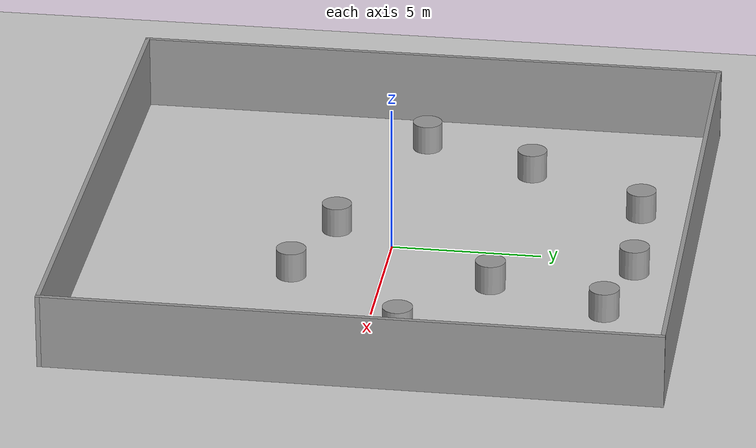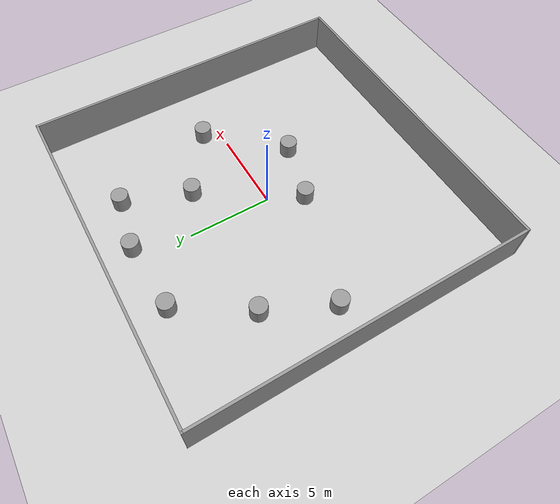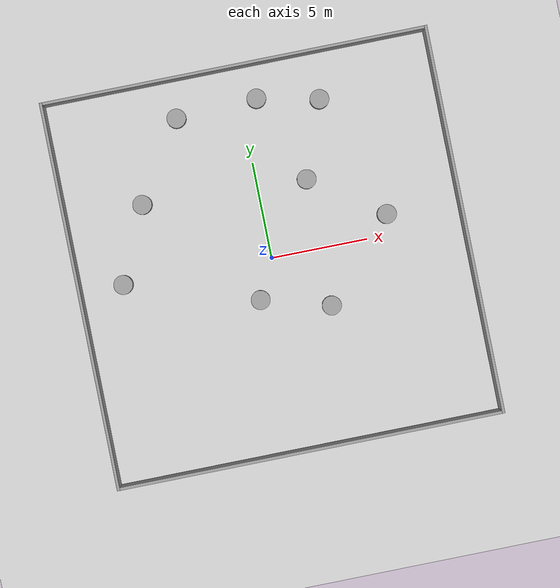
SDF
<sdf version="1.7">
 <world name="default">
  <light name="sun" type="directional">
   <pose>0 0 10 0 -0 0</pose>
   <diffuse>0.8 0.8 0.8 1</diffuse>
   <specular>0.2 0.2 0.2 1</specular>
   <attenuation>
    <range>1000</range>
    <constant>0.9</constant>
    <linear>0.01</linear>
    <quadratic>0.001</quadratic>
   </attenuation>
   <direction>-0.5 0.1 -0.9</direction>
   <spot><inner_angle>0</inner_angle><outer_angle>0</outer_angle><falloff>0</falloff></spot>
  </light>
  <model name="ground_plane">
   <static>1</static>
   <link name="link">
    <collision name="collision">
     <geometry><plane><normal>0 0 1</normal><size>100 100</size></plane></geometry>
     <surface>
      <contact><collide_bitmask>65535</collide_bitmask></contact>
      <friction><ode><mu>100</mu><mu2>50</mu2></ode></friction>
     </surface>
    </collision>
    <visual name="visual">
     <cast_shadows>0</cast_shadows>
     <geometry><plane><normal>0 0 1</normal><size>100 100</size></plane></geometry>
     <material>
      <script><uri>file://media/materials/scripts/gazebo.material</uri><name>Gazebo/Grey</name></script>
     </material>
    </visual>
   </link>
  </model>
  <gravity>0 0 -9.8</gravity>
  <magnetic_field>6e-06 2.3e-05 -4.2e-05</magnetic_field>
  <atmosphere type="adiabatic"/>
  <physics type="ode">
   <max_step_size>0.001</max_step_size>
   <real_time_factor>1</real_time_factor>
   <real_time_update_rate>1000</real_time_update_rate>
  </physics>
  <scene><ambient>0.4 0.4 0.4 1</ambient><background>0.7 0.7 0.7 1</background><shadows>1</shadows></scene>
  <audio><device>default</device></audio>
  <spherical_coordinates>
   <surface_model>EARTH_WGS84</surface_model>
   <latitude_deg>0</latitude_deg>
   <longitude_deg>0</longitude_deg>
   <elevation>0</elevation>
   <heading_deg>0</heading_deg>
  </spherical_coordinates>
  <model name="20x20">
   <link name="Wall_1">
    <collision name="Wall_1_Collision">
     <geometry><box><size>20.15 0.15 2.5</size></box></geometry>
     <pose>0 0 1.25 0 -0 0</pose>
    </collision>
    <visual name="Wall_1_Visual">
     <pose>0 0 1.25 0 -0 0</pose>
     <geometry><box><size>20.15 0.15 2.5</size></box></geometry>
     <material>
      <script><uri>file://media/materials/scripts/gazebo.material</uri><name>Gazebo/Grey</name></script>
      <ambient>1 1 1 1</ambient>
     </material>
     <meta><layer>0</layer></meta>
    </visual>
    <pose>-10 0 0 0 -0 1.5708</pose>
   </link>
   <link name="Wall_5">
    <collision name="Wall_5_Collision">
     <geometry><box><size>20.15 0.15 2.5</size></box></geometry>
     <pose>0 0 1.25 0 -0 0</pose>
    </collision>
    <visual name="Wall_5_Visual">
     <pose>0 0 1.25 0 -0 0</pose>
     <geometry><box><size>20.15 0.15 2.5</size></box></geometry>
     <material>
      <script><uri>file://media/materials/scripts/gazebo.material</uri><name>Gazebo/Grey</name></script>
      <ambient>1 1 1 1</ambient>
     </material>
     <meta><layer>0</layer></meta>
    </visual>
    <pose>10 0 0 0 -0 -1.5708</pose>
   </link>
   <link name="Wall_7">
    <collision name="Wall_7_Collision">
     <geometry><box><size>20.15 0.15 2.5</size></box></geometry>
     <pose>0 0 1.25 0 -0 0</pose>
    </collision>
    <visual name="Wall_7_Visual">
     <pose>0 0 1.25 0 -0 0</pose>
     <geometry><box><size>20.15 0.15 2.5</size></box></geometry>
     <material>
      <script><uri>file://media/materials/scripts/gazebo.material</uri><name>Gazebo/Grey</name></script>
      <ambient>1 1 1 1</ambient>
     </material>
     <meta><layer>0</layer></meta>
    </visual>
    <pose>0 -10 0 0 -0 0</pose>
   </link>
   <link name="Wall_9">
    <collision name="Wall_9_Collision">
     <geometry><box><size>20.15 0.15 2.5</size></box></geometry>
     <pose>0 0 1.25 0 -0 0</pose>
    </collision>
    <visual name="Wall_9_Visual">
     <pose>0 0 1.25 0 -0 0</pose>
     <geometry><box><size>20.15 0.15 2.5</size></box></geometry>
     <material>
      <script><uri>file://media/materials/scripts/gazebo.material</uri><name>Gazebo/Grey</name></script>
      <ambient>1 1 1 1</ambient>
     </material>
     <meta><layer>0</layer></meta>
    </visual>
    <pose>0 10 0 0 -0 0</pose>
   </link>
   <static>1</static>
  </model>
  <model name="unit_cylinder">
   <pose>-7.768 0.158653 0.499992 -3e-06 3e-06 0</pose>
   <link name="link">
    <inertial>
     <mass>1</mass>
     <inertia><ixx>0.145833</ixx><ixy>0</ixy><ixz>0</ixz><iyy>0.145833</iyy><iyz>0</iyz><izz>0.125</izz></inertia>
    </inertial>
    <collision name="collision">
     <geometry><cylinder><radius>0.5</radius><length>1</length></cylinder></geometry>
    </collision>
    <visual name="visual">
     <geometry><cylinder><radius>0.5</radius><length>1</length></cylinder></geometry>
     <material>
      <script><name>Gazebo/Grey</name><uri>file://media/materials/scripts/gazebo.material</uri></script>
     </material>
    </visual>
   </link>
  </model>
  <model name="unit_cylinder_clone">
   <pose>-6 4 0.499998 3e-06 -3e-06 0</pose>
   <link name="link">
    <inertial>
     <mass>1</mass>
     <inertia><ixx>0.145833</ixx><ixy>0</ixy><ixz>0</ixz><iyy>0.145833</iyy><iyz>0</iyz><izz>0.125</izz></inertia>
    </inertial>
    <collision name="collision">
     <geometry><cylinder><radius>0.5</radius><length>1</length></cylinder></geometry>
    </collision>
    <visual name="visual">
     <geometry><cylinder><radius>0.5</radius><length>1</length></cylinder></geometry>
     <material>
      <script><name>Gazebo/Grey</name><uri>file://media/materials/scripts/gazebo.material</uri></script>
     </material>
    </visual>
   </link>
  </model>
  <model name="unit_cylinder_clone_0">
   <pose>-3.4025 8 0.499992 -3e-06 3e-06 0</pose>
   <link name="link">
    <inertial>
     <mass>1</mass>
     <inertia><ixx>0.145833</ixx><ixy>0</ixy><ixz>0</ixz><iyy>0.145833</iyy><iyz>0</iyz><izz>0.125</izz></inertia>
    </inertial>
    <collision name="collision">
     <geometry><cylinder><radius>0.5</radius><length>1</length></cylinder></geometry>
    </collision>
    <visual name="visual">
     <geometry><cylinder><radius>0.5</radius><length>1</length></cylinder></geometry>
     <material>
      <script><name>Gazebo/Grey</name><uri>file://media/materials/scripts/gazebo.material</uri></script>
     </material>
    </visual>
   </link>
  </model>
  <model name="unit_cylinder_clone_1">
   <pose>0.82999 8.19611 0.499992 -3e-06 4e-06 0</pose>
   <link name="link">
    <inertial>
     <mass>1</mass>
     <inertia><ixx>0.145833</ixx><ixy>0</ixy><ixz>0</ixz><iyy>0.145833</iyy><iyz>0</iyz><izz>0.125</izz></inertia>
    </inertial>
    <collision name="collision">
     <geometry><cylinder><radius>0.5</radius><length>1</length></cylinder></geometry>
    </collision>
    <visual name="visual">
     <geometry><cylinder><radius>0.5</radius><length>1</length></cylinder></geometry>
     <material>
      <script><name>Gazebo/Grey</name><uri>file://media/materials/scripts/gazebo.material</uri></script>
     </material>
    </visual>
   </link>
  </model>
  <model name="unit_cylinder_clone_2">
   <pose>4 7.52936 0.499992 -3e-06 3e-06 0</pose>
   <link name="link">
    <inertial>
     <mass>1</mass>
     <inertia><ixx>0.145833</ixx><ixy>0</ixy><ixz>0</ixz><iyy>0.145833</iyy><iyz>0</iyz><izz>0.125</izz></inertia>
    </inertial>
    <collision name="collision">
     <geometry><cylinder><radius>0.5</radius><length>1</length></cylinder></geometry>
    </collision>
    <visual name="visual">
     <geometry><cylinder><radius>0.5</radius><length>1</length></cylinder></geometry>
     <material>
      <script><name>Gazebo/Grey</name><uri>file://media/materials/scripts/gazebo.material</uri></script>
     </material>
    </visual>
   </link>
  </model>
  <model name="unit_cylinder_clone_3">
   <pose>2.54346 3.62119 0.499998 3e-06 4e-06 -0</pose>
   <link name="link">
    <inertial>
     <mass>1</mass>
     <inertia><ixx>0.145833</ixx><ixy>0</ixy><ixz>0</ixz><iyy>0.145833</iyy><iyz>0</iyz><izz>0.125</izz></inertia>
    </inertial>
    <collision name="collision">
     <geometry><cylinder><radius>0.5</radius><length>1</length></cylinder></geometry>
    </collision>
    <visual name="visual">
     <geometry><cylinder><radius>0.5</radius><length>1</length></cylinder></geometry>
     <material>
      <script><name>Gazebo/Grey</name><uri>file://media/materials/scripts/gazebo.material</uri></script>
     </material>
    </visual>
   </link>
  </model>
  <model name="unit_cylinder_clone_4">
   <pose>2.53345 -3 0.499992 -3e-06 3e-06 0</pose>
   <link name="link">
    <inertial>
     <mass>1</mass>
     <inertia><ixx>0.145833</ixx><ixy>0</ixy><ixz>0</ixz><iyy>0.145833</iyy><iyz>0</iyz><izz>0.125</izz></inertia>
    </inertial>
    <collision name="collision">
     <geometry><cylinder><radius>0.5</radius><length>1</length></cylinder></geometry>
    </collision>
    <visual name="visual">
     <geometry><cylinder><radius>0.5</radius><length>1</length></cylinder></geometry>
     <material>
      <script><name>Gazebo/Grey</name><uri>file://media/materials/scripts/gazebo.material</uri></script>
     </material>
    </visual>
   </link>
  </model>
  <model name="unit_cylinder_clone_5">
   <pose>-1 -2 0.499998 3e-06 -3e-06 0</pose>
   <link name="link">
    <inertial>
     <mass>1</mass>
     <inertia><ixx>0.145833</ixx><ixy>0</ixy><ixz>0</ixz><iyy>0.145833</iyy><iyz>0</iyz><izz>0.125</izz></inertia>
    </inertial>
    <collision name="collision">
     <geometry><cylinder><radius>0.5</radius><length>1</length></cylinder></geometry>
    </collision>
    <visual name="visual">
     <geometry><cylinder><radius>0.5</radius><length>1</length></cylinder></geometry>
     <material>
      <script><name>Gazebo/Grey</name><uri>file://media/materials/scripts/gazebo.material</uri></script>
     </material>
    </visual>
   </link>
  </model>
  <model name="unit_cylinder_clone_6">
   <pose>6.23267 1.0527 0.499997 3e-06 4e-06 -0</pose>
   <link name="link">
    <inertial>
     <mass>1</mass>
     <inertia><ixx>0.145833</ixx><ixy>0</ixy><ixz>0</ixz><iyy>0.145833</iyy><iyz>0</iyz><izz>0.125</izz></inertia>
    </inertial>
    <collision name="collision">
     <geometry><cylinder><radius>0.5</radius><length>1</length></cylinder></geometry>
    </collision>
    <visual name="visual">
     <geometry><cylinder><radius>0.5</radius><length>1</length></cylinder></geometry>
     <material>
      <script><name>Gazebo/Grey</name><uri>file://media/materials/scripts/gazebo.material</uri></script>
     </material>
    </visual>
   </link>
  </model>
 </world>
</sdf>
